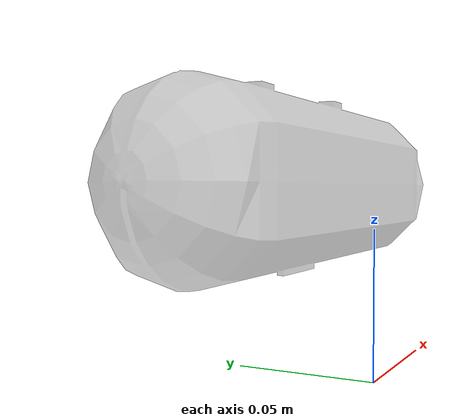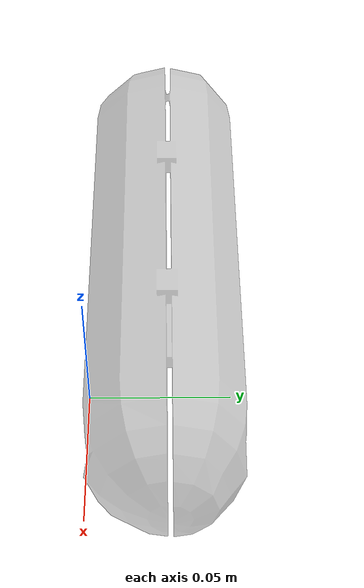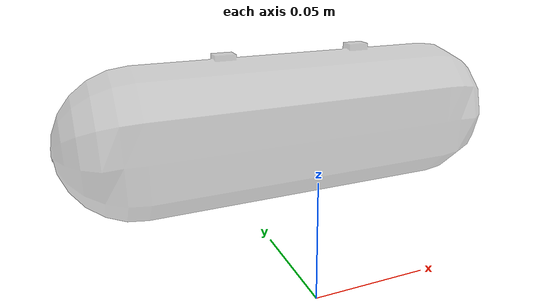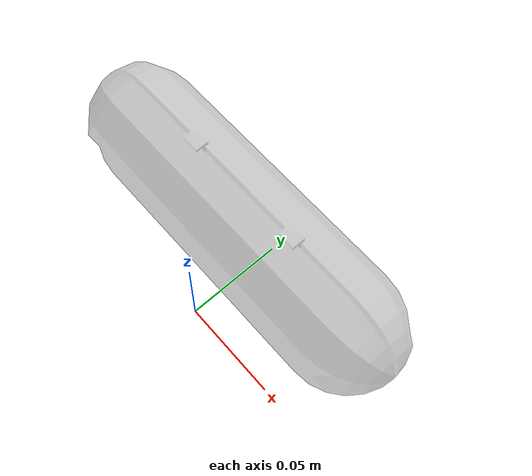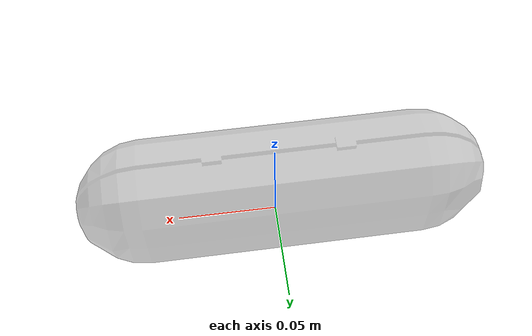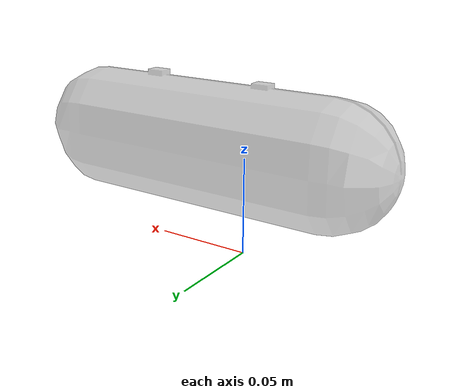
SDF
<?xml version="1.0" ?>
<sdf version="1.5">
  <model name="hri_obj_glassescase">
    <link name="link">
      <pose>0 0 0.065 0 0 0</pose>
      <inertial>
        <mass>0.0599</mass>
        <inertia>
          <ixx>0.0003028961527030333</ixx>
          <ixy>0</ixy>
          <ixz>0</ixz>
          <iyy>0.0003028961527030333</iyy>
          <iyz>0</iyz>
          <izz>3.2876352372798436e-05</izz>
        </inertia>
      </inertial>

      <collision name="collision">
        <geometry>
          <mesh>
            <uri>model://hri_obj_glassescase/meshes/glassescase.dae</uri>
          </mesh>
        </geometry>
        <surface>
          <contact>
            <!-- typical acrylic plastic material properties -->
            <poissons_ratio>0.35</poissons_ratio>
            <elastic_modulus>3.102640776e+09</elastic_modulus>
            <ode>
              <kp>100000</kp>
              <kd>100</kd>
              <max_vel>100.0</max_vel>
              <min_depth>0.001</min_depth>
            </ode>
          </contact>
          <friction>
            <torsional>
              <coefficient>1.0</coefficient>
              <use_patch_radius>0</use_patch_radius>
              <surface_radius>0.01</surface_radius>
            </torsional>
          </friction>
        </surface>
      </collision>

      <visual name="visual">
        <geometry>
          <mesh>
            <uri>model://hri_obj_glassescase/meshes/glassescase.dae</uri>
          </mesh>
        </geometry>
        <material>
          <script>
            <uri>file://media/materials/scripts/gazebo.material</uri>
            <name>Gazebo/GreyTransparent</name>
          </script>
        </material>
      </visual>

    </link>
  </model>
</sdf>
